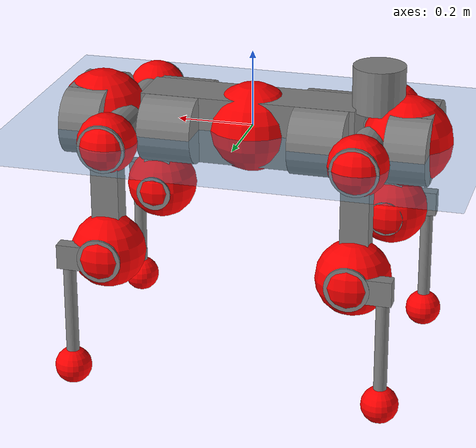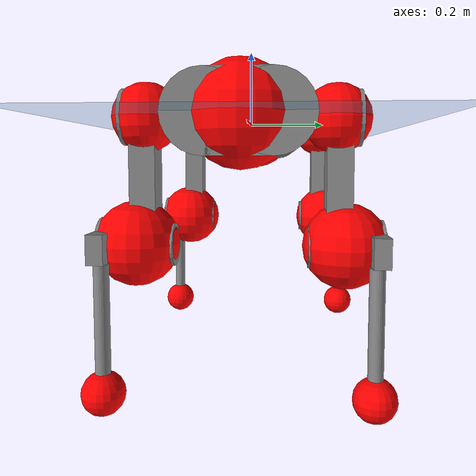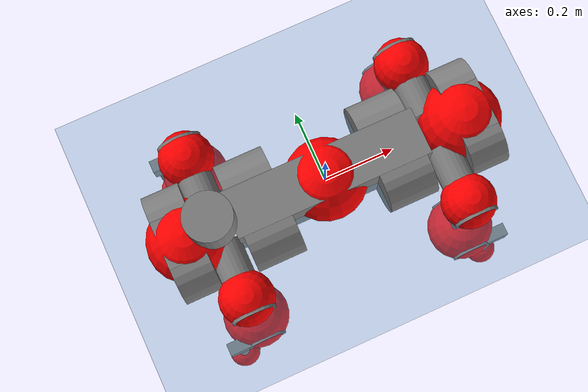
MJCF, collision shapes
<mujoco model="anymal_c">
  <compiler angle="radian" assetdir="assets" balanceinertia="true" inertiafromgeom="false"/>

  <option timestep="0.005" density="1.2" viscosity="2e-05"/>

  <size nkey="1"/>

  <visual>
    <quality shadowsize="8192"/>
    <map shadowclip="0.5"/>
  </visual>

  <default>
    <default class="/">
      <material specular="0" shininess="0.25"/>
      <geom contype="0" conaffinity="0" group="1" solref="-1000 -80"/>
      <site size="0.01 0.005 0.005" group="5"/>
      <general forcelimited="true" forcerange="-80 80" biastype="affine" gainprm="80" biasprm="0 -80 -2"/>
      <default class="anymal_c">
        <joint armature="0.01" damping="0.01" frictionloss="0.1"/>
        <default class="visual">
          <geom type="mesh" group="2"/>
          <default class="visual_zflip"/>
        </default>
        <default class="collision">
          <geom type="cylinder" group="3"/>
          <default class="foot">
            <geom size="0.03 0 0" type="sphere" condim="6" priority="1" friction="0.8 0.02 0.01" solimp="0.015 1 0.03"/>
          </default>
        </default>
      </default>
      <default class="reward_collision_sphere">
        <geom group="5" rgba="1 0 0 1"/>
      </default>
    </default>
  </default>

  <asset>
    <texture type="skybox" colorspace="auto" name="//unnamed_texture_0" builtin="gradient" rgb1="0.95 0.95 0.95" rgb2="0.95 0.95 0.95" width="100" height="600"/>
    <texture type="2d" colorspace="auto" name="texplane" builtin="checker" rgb1="0.345 0.575 0.748" rgb2="0.345 0.575 0.748" markrgb="1 1 1" width="512" height="512"/>
    <texture type="2d" colorspace="linear" name="base" file="base.png"/>
    <texture type="2d" colorspace="linear" name="top_shell" file="top_shell.png"/>
    <texture type="2d" colorspace="linear" name="bottom_shell" file="bottom_shell.png"/>
    <texture type="2d" colorspace="linear" name="remote" file="remote.png"/>
    <texture type="2d" colorspace="linear" name="hatch" file="hatch.png"/>
    <texture type="2d" colorspace="linear" name="handle" file="handle.png"/>
    <texture type="2d" colorspace="linear" name="face" file="face.png"/>
    <texture type="2d" colorspace="linear" name="battery" file="battery.png"/>
    <texture type="2d" colorspace="linear" name="lidar_cage" file="lidar_cage.png"/>
    <texture type="2d" colorspace="linear" name="depth_camera" file="depth_camera.png"/>
    <texture type="2d" colorspace="linear" name="wide_angle_camera" file="wide_angle_camera.png"/>
    <texture type="2d" colorspace="linear" name="lidar" file="lidar.png"/>
    <texture type="2d" colorspace="linear" name="drive" file="drive.png"/>
    <texture type="2d" colorspace="linear" name="hip_l" file="hip_l.png"/>
    <texture type="2d" colorspace="linear" name="shank_l" file="shank_l.png"/>
    <texture type="2d" colorspace="linear" name="foot" file="foot.png"/>
    <texture type="2d" colorspace="linear" name="thigh" file="thigh.png"/>
    <texture type="2d" colorspace="linear" name="shank_r" file="shank_r.png"/>
    <texture type="2d" colorspace="linear" name="hip_r" file="hip_r.png"/>
    <material name="MatPlane" class="/" texture="texplane" texuniform="true" texrepeat="2 2" specular="0.9" shininess="0.5"/>
    <material name="black_plastic" class="/" rgba="0.007 0.007 0.007 1"/>
    <material name="green" class="/" rgba="0.052 0.178 0.033 1"/>
    <material name="red" class="/" rgba="0.178 0.006 0.005 1"/>
    <material name="yellow" class="/" rgba="0.178 0.119 0.006 1"/>
    <material name="lwl" class="/" rgba="0.8 0.8 0.8 1"/>
    <material name="base" class="/" texture="base"/>
    <material name="top_shell" class="/" texture="top_shell"/>
    <material name="bottom_shell" class="/" texture="bottom_shell"/>
    <material name="hip_l" class="/" texture="hip_l"/>
    <material name="thigh" class="/" texture="thigh"/>
    <material name="shank_l" class="/" texture="shank_l"/>
    <material name="foot" class="/" texture="foot"/>
    <material name="hip_r" class="/" texture="hip_r"/>
    <material name="shank" class="/" texture="shank_r"/>
    <material name="hatch" class="/" texture="hatch"/>
    <material name="remote" class="/" texture="remote"/>
    <material name="handle" class="/" texture="handle"/>
    <material name="face" class="/" texture="face"/>
    <material name="depth_camera" class="/" texture="depth_camera"/>
    <material name="wide_angle_camera" class="/" texture="wide_angle_camera"/>
    <material name="battery" class="/" texture="battery"/>
    <material name="lidar_cage" class="/" texture="lidar_cage"/>
    <material name="lidar" class="/" texture="lidar"/>
    <material name="drive" class="/" texture="drive"/>
    <mesh name="base_0" class="/" file="base_0.obj"/>
    <mesh name="base_1" class="/" file="base_1.obj"/>
    <mesh name="base_2" class="/" file="base_2.obj"/>
    <mesh name="base_3" class="/" file="base_3.obj"/>
    <mesh name="base_4" class="/" file="base_4.obj"/>
    <mesh name="base_5" class="/" file="base_5.obj"/>
    <mesh name="top_shell" class="/" file="top_shell.obj"/>
    <mesh name="bottom_shell" class="/" file="bottom_shell.obj"/>
    <mesh name="remote" class="/" file="remote.obj"/>
    <mesh name="handle" class="/" file="handle.obj"/>
    <mesh name="face" class="/" file="face.obj"/>
    <mesh name="wide_angle_camera" class="/" file="wide_angle_camera.obj"/>
    <mesh name="depth_camera" class="/" file="depth_camera.obj"/>
    <mesh name="battery" class="/" file="battery.obj"/>
    <mesh name="lidar_cage" class="/" file="lidar_cage.obj"/>
    <mesh name="lidar" class="/" file="lidar.obj"/>
    <mesh name="drive" class="/" file="drive.obj"/>
    <mesh name="hip_l" class="/" file="hip_l.obj"/>
    <mesh name="thigh" class="/" file="thigh.obj"/>
    <mesh name="shank_l" class="/" file="shank_l.obj"/>
    <mesh name="foot" class="/" file="foot.obj"/>
    <mesh name="hip_r" class="/" file="hip_r.obj"/>
    <mesh name="hatch" class="/" file="hatch.obj"/>
    <mesh name="shank_r" class="/" file="shank_r.obj"/>
  </asset>

  <worldbody>
    <geom name="floor" class="/" size="100 100 0.125" type="plane" group="0" material="MatPlane"/>
    <light name="toplight_shadow" class="/" pos="0 0 5" dir="0.0990148 0.0990148 -0.990148" type="directional" ambient="0.04 0.04 0.04" diffuse="0.55 0.55 0.55" specular="0.12 0.12 0.12"/>
    <light name="toplight_fill" class="/" pos="0 0 5" dir="0.0990148 0.0990148 -0.990148" type="directional" castshadow="false" ambient="0.04 0.04 0.04" diffuse="0.3 0.3 0.3" specular="0.08 0.08 0.08"/>
    <body name="trunk" childclass="anymal_c" pos="0.000132769 -0.000146841 -0.0028261" quat="1 4.91979e-06 0.000183266 6.28524e-05">
      <inertial pos="0.0012105 0.0017381 0.0522791" quat="0.499376 0.50062 0.500185 0.499818" mass="16.7555" diaginertia="0.383755 0.591755 0.218823"/>
      <joint name="//unnamed_joint_0" type="free" armature="0" damping="0" frictionloss="0"/>
      <geom name="//unnamed_geom_1" class="visual" material="green" mesh="base_0"/>
      <geom name="//unnamed_geom_2" class="visual" material="yellow" mesh="base_1"/>
      <geom name="//unnamed_geom_3" class="visual" material="red" mesh="base_2"/>
      <geom name="//unnamed_geom_4" class="visual" material="black_plastic" mesh="base_3"/>
      <geom name="//unnamed_geom_5" class="visual" material="lwl" mesh="base_4"/>
      <geom name="//unnamed_geom_6" class="visual" material="base" mesh="base_5"/>
      <geom name="trunk_1" class="collision" size="0.281225 0.067882 0.0872769" type="box"/>
      <geom name="trunk_2" class="collision" size="0.0872769 0.0703064" pos="0.196564 0.0699224 0" quat="0.707107 0 0.707107 0"/>
      <geom name="trunk_3" class="collision" size="0.0872769 0.0703064" pos="-0.196564 0.0699224 0" quat="0.707107 0 0.707107 0"/>
      <geom name="trunk_4" class="collision" size="0.0872769 0.0703064" pos="0.196564 -0.0699224 0" quat="0.707107 0 0.707107 0"/>
      <geom name="trunk_5" class="collision" size="0.0872769 0.0703064" pos="-0.196564 -0.0699224 0" quat="0.707107 0 0.707107 0"/>
      <geom name="//unnamed_geom_12" class="visual" material="top_shell" mesh="top_shell"/>
      <geom name="//unnamed_geom_13" class="visual" material="bottom_shell" mesh="bottom_shell"/>
      <geom name="//unnamed_geom_14" class="visual" material="remote" mesh="remote"/>
      <geom name="//unnamed_geom_15" class="visual" material="handle" mesh="handle"/>
      <geom name="//unnamed_geom_16" class="visual" pos="0.374601 0 0" quat="1 0 0 0" material="face" mesh="face"/>
      <geom name="trunk_6" class="collision" size="0.0533359 0.067882 0.0872769" pos="0.424307 0 0" type="box"/>
      <geom name="//unnamed_geom_18" class="collision" size="0.0872769 0.0533359" pos="0.424307 0.0699224 0" quat="0.707107 0 0.707107 0"/>
      <geom name="//unnamed_geom_19" class="collision" size="0.0872769 0.0533359" pos="0.424307 -0.0699224 0" quat="0.707107 0 0.707107 0"/>
      <geom name="//unnamed_geom_20" class="visual" pos="0.417217 0 -0.0301743" quat="0.965926 0 0.258819 0" material="depth_camera" mesh="depth_camera"/>
      <geom name="//unnamed_geom_21" class="visual" pos="0.46362 0 0.0150687" material="wide_angle_camera" mesh="wide_angle_camera"/>
      <geom name="//unnamed_geom_22" class="visual_zflip" pos="-0.374601 0 0" quat="0 0 0 1" material="face" mesh="face"/>
      <geom name="trunk_7" class="collision" size="0.0533359 0.067882 0.0872769" pos="-0.424307 0 0" quat="0 0 0 1" type="box"/>
      <geom name="//unnamed_geom_24" class="collision" size="0.0872769 0.0533359" pos="-0.424307 -0.0699224 0" quat="0 -0.707107 0 0.707107"/>
      <geom name="//unnamed_geom_25" class="collision" size="0.0872769 0.0533359" pos="-0.424307 0.0699224 0" quat="0 -0.707107 0 0.707107"/>
      <geom name="//unnamed_geom_26" class="visual" pos="-0.417217 0 -0.0301743" quat="0 -0.258819 0 0.965926" material="depth_camera" mesh="depth_camera"/>
      <geom name="//unnamed_geom_27" class="visual_zflip" pos="-0.46362 0 0.0150687" quat="0 0 0 1" material="wide_angle_camera" mesh="wide_angle_camera"/>
      <geom name="//unnamed_geom_28" class="visual" material="battery" mesh="battery"/>
      <geom name="//unnamed_geom_29" class="visual" pos="0 0.077628 0.0284599" quat="0.683013 -0.183013 0.183013 0.683013" material="depth_camera" mesh="depth_camera"/>
      <geom name="//unnamed_geom_30" class="visual" pos="0 -0.077628 0.0284599" quat="0.683013 0.183013 0.183013 -0.683013" material="depth_camera" mesh="depth_camera"/>
      <geom name="//unnamed_geom_31" class="visual" pos="-0.328962 0 0.0739848" quat="1 0 0 0" material="lidar_cage" mesh="lidar_cage"/>
      <geom name="trunk_8" class="collision" size="0.067882 0.0581846" pos="-0.328962 0 0.134381"/>
      <geom name="//unnamed_geom_33" class="visual" pos="-0.328962 3.73816e-05 0.143138" quat="0.707107 0 0 -0.707107" material="lidar" mesh="lidar"/>
      <geom name="//unnamed_geom_34" class="visual" pos="0.271032 0.103887 -1.32904e-10" quat="0.258819 0.965926 0 0" material="drive" mesh="drive"/>
      <geom name="//unnamed_geom_35" class="visual" pos="0.271032 -0.103887 1.32904e-10" quat="0.258819 -0.965926 0 0" material="drive" mesh="drive"/>
      <geom name="//unnamed_geom_36" class="visual" pos="-0.271032 0.103887 1.32904e-10" quat="0 0 0.965926 -0.258819" material="drive" mesh="drive"/>
      <geom name="//unnamed_geom_37" class="visual" pos="-0.271032 -0.103887 -1.32904e-10" quat="0 0 -0.965926 -0.258819" material="drive" mesh="drive"/>
      <geom name="//unnamed_geom_38" class="visual" pos="0.104834 0 0.0734815" quat="1 0 0 0" material="hatch" mesh="hatch"/>
      <geom name="//unnamed_geom_39" class="reward_collision_sphere" size="0.116369"/>
      <geom name="//unnamed_geom_40" class="reward_collision_sphere" size="0.116369" pos="0.406684 0 0"/>
      <geom name="//unnamed_geom_41" class="reward_collision_sphere" size="0.116369" pos="-0.406684 0 0"/>
      <site name="imu" pos="0.231929 -0.00483792 0.0548932" size="0.00969743"/>
      <camera name="track" pos="0 -1.99778 0" quat="0.707107 0.707107 0 0" mode="trackcom"/>
      <camera name="ego_camera" pos="0.406684 0 -0.0402638" quat="-0.5 -0.5 0.5 0.5"/>
      <body name="LF_HIP" pos="0.271508 0.101882 -0.00160913" quat="0.258776 0.965937 0.000259122 -0.000238901">
        <inertial pos="0.04888 -0.0148325 -0.0107373" quat="-0.128652 0.712109 -0.136435 0.676561" mass="2.49021" diaginertia="0.00349913 0.00468128 0.00347626"/>
        <joint name="LF_HAA" pos="0 0 0" axis="0.999995 0.00104379 0.00298423" range="-0.760124 0.485303" armature="0.0111253" damping="0.0231635" frictionloss="0.084751"/>
        <geom name="//unnamed_geom_42" class="visual" pos="0 -7.81813e-06 1.28412e-06" quat="0.258819 -0.965926 0 0" material="hip_l" mesh="hip_l"/>
        <geom name="//unnamed_geom_43" class="visual" pos="0.0541341 -0.0668505 -0.0386532" quat="0.183013 -0.683013 0.683013 0.183013" material="drive" mesh="drive"/>
        <geom name="//unnamed_geom_44" class="collision" size="0.0484871 0.067882" pos="0.0541341 -0.0119465 -0.00695054" quat="-0.353553 -0.612372 0.612372 -0.353553"/>
        <body name="LF_THIGH" pos="0.054756 -0.07296 -0.0403675" quat="0.183018 -0.683015 0.683006 0.183021">
          <inertial pos="0.0282539 -0.000443922 -0.249845" quat="0.993115 -0.00736659 -0.0792101 0.0859855" mass="2.73557" diaginertia="0.0181387 0.0298813 0.00413476"/>
          <joint name="LF_HFE" pos="0 0 0" axis="0.999953 0.00332145 0.00906911" range="-3.20007 3.18012" armature="0.00996104" damping="0.00974177" frictionloss="0.0919546"/>
          <geom name="//unnamed_geom_45" class="visual" pos="-0.0018931 -2.98308e-06 0" quat="0.707107 0 0 -0.707107" material="thigh" mesh="thigh"/>
          <geom name="//unnamed_geom_46" class="collision" size="0.0630333 0.0387897" pos="0.0361497 0 0" quat="0.5 0.5 -0.5 -0.5"/>
          <geom name="//unnamed_geom_47" class="collision" size="0.0363654 0.0290923 0.137038" pos="0.0271123 0 -0.142246" quat="0.707107 0 0 -0.707107" type="box"/>
          <geom name="//unnamed_geom_48" class="visual" pos="0.0906453 0 -0.28688" quat="1 0 0 0" material="drive" mesh="drive"/>
          <geom name="//unnamed_geom_49" class="collision" size="0.0484871 0.067882" pos="0.0273834 0 -0.28688" quat="0.707107 0 0.707107 0"/>
          <geom name="//unnamed_geom_50" class="reward_collision_sphere" size="0.0775794" pos="0.0225935 0 0"/>
          <body name="LF_SHANK" pos="0.0892495 0.00251801 -0.284367" quat="1 -0.000666541 0.000207445 -0.000702653">
            <inertial pos="0.00586076 -0.0611713 -0.0814237" quat="0.992986 -0.115477 -0.000824657 -0.025363" mass="0.507698" diaginertia="0.00611689 0.00912195 0.00110282"/>
            <joint name="LF_KFE" pos="0 0 0" axis="1 0.000212434 0.000556483" range="-3.15867 3.14846" armature="0.00879466" damping="0.0222423" frictionloss="0.0832617"/>
            <geom name="//unnamed_geom_51" class="visual" pos="-0.000617298 -0.00329146 0" quat="0.707107 0 0 -0.707107" material="shank_l" mesh="shank_l"/>
            <geom name="LF_kfe_act" class="collision" size="0.0581846 0.0193949" pos="0.0180748 0 0" quat="0.5 0.5 -0.5 -0.5"/>
            <geom name="//unnamed_geom_53" class="collision" size="0.0557592 0.0327288 0.0184251" pos="0.0180748 -0.0574352 0" quat="0.5 0.5 -0.5 -0.5" type="box"/>
            <geom name="//unnamed_geom_54" class="visual" pos="0.011794 -0.0889132 -0.340199" quat="0.382683 0 0 -0.92388" material="foot" mesh="foot"/>
            <geom name="LF_calf" class="collision" size="0.0169705 0.136978" pos="0.0117938 -0.0878525 -0.1701" quat="0.707107 0 0 -0.707107"/>
            <geom name="LF_foot" class="foot" size="0.0313186" pos="0.0117938 -0.0878525 -0.317551" quat="0.707107 0 0 -0.707107"/>
            <geom name="//unnamed_geom_57" class="reward_collision_sphere" size="0.0969743" pos="-0.0451871 0 0"/>
            <geom name="//unnamed_geom_58" class="reward_collision_sphere" size="0.0484871" pos="0.0117938 -0.0878525 -0.317551"/>
            <site name="LF_foot" class="foot" pos="0.0117938 -0.0878525 -0.317551" quat="0.707107 0 0 -0.707107" size="0.00969743"/>
          </body>
        </body>
      </body>
      <body name="RF_HIP" pos="0.273144 -0.107127 0.000230498" quat="0.25865 -0.96597 -0.00125694 0.00047846">
        <inertial pos="0.0508141 0.0150813 -0.00792156" quat="0.132739 0.678967 0.127408 0.71074" mass="2.49743" diaginertia="0.0034786 0.00461597 0.00339582"/>
        <joint name="RF_HAA" pos="0 0 0" axis="1 8.23167e-05 -0.000321609" range="-0.438559 0.681446" armature="0.00967152" damping="0.0136578" frictionloss="0.0832939"/>
        <geom name="//unnamed_geom_59" class="visual" pos="0 7.81807e-06 1.28412e-06" quat="0.258819 0.965926 0 0" material="hip_r" mesh="hip_r"/>
        <geom name="//unnamed_geom_60" class="visual" pos="0.0541341 0.0668505 -0.0386532" quat="0.183013 0.683013 0.683013 -0.183013" material="drive" mesh="drive"/>
        <geom name="//unnamed_geom_61" class="collision" size="0.0484871 0.067882" pos="0.0541341 0.0119465 -0.00695054" quat="-0.353553 0.612372 0.612372 0.353553"/>
        <body name="RF_THIGH" pos="0.0555103 0.0752576 -0.0436951" quat="0.183624 0.682509 0.683261 -0.183354">
          <inertial pos="0.0276553 0.000763751 -0.247149" quat="0.992501 -0.00418635 -0.0825339 0.0900645" mass="2.75225" diaginertia="0.0180375 0.0293502 0.0043693"/>
          <joint name="RF_HFE" pos="0 0 0" axis="0.999975 0.00613167 0.00363765" stiffness="0.00636781" range="-3.12193 3.09975" armature="0.00967705" damping="0" frictionloss="0.0960838"/>
          <geom name="//unnamed_geom_62" class="visual" pos="-0.0018931 -2.98308e-06 0" quat="0.707107 0 0 -0.707107" material="thigh" mesh="thigh"/>
          <geom name="//unnamed_geom_63" class="collision" size="0.0630333 0.0387897" pos="0.0361497 0 0" quat="0.5 0.5 0.5 0.5"/>
          <geom name="//unnamed_geom_64" class="collision" size="0.0363654 0.0290923 0.137038" pos="0.0271123 0 -0.142246" quat="0.707107 0 0 0.707107" type="box"/>
          <geom name="//unnamed_geom_65" class="visual" pos="0.0906453 0 -0.28688" quat="1 0 0 0" material="drive" mesh="drive"/>
          <geom name="//unnamed_geom_66" class="collision" size="0.0484871 0.067882" pos="0.0273834 0 -0.28688" quat="0.707107 0 0.707107 0"/>
          <geom name="//unnamed_geom_67" class="reward_collision_sphere" size="0.0775794" pos="0.0225935 0 0"/>
          <body name="RF_SHANK" pos="0.0927109 0.00034583 -0.284466" quat="1 2.99195e-05 7.38753e-06 -0.000237159">
            <inertial pos="0.00352709 0.0610617 -0.079757" quat="0.992486 0.119863 -0.00235161 0.0244819" mass="0.534589" diaginertia="0.00637481 0.0092677 0.00116609"/>
            <joint name="RF_KFE" pos="0 0 0" axis="0.999994 0.0028856 -0.00169296" range="-3.11539 3.08703" armature="0.00951365" damping="0.0052128" frictionloss="0.0922368"/>
            <geom name="//unnamed_geom_68" class="visual" pos="-0.000617294 0.00329146 0" quat="0.707107 0 0 0.707107" material="shank" mesh="shank_r"/>
            <geom name="RF_kfe_act" class="collision" size="0.0581846 0.0193949" pos="0.0180748 0 0" quat="0.5 0.5 0.5 0.5"/>
            <geom name="//unnamed_geom_70" class="collision" size="0.0557592 0.0327288 0.0184251" pos="0.0180748 0.0574352 0" quat="0.5 0.5 0.5 0.5" type="box"/>
            <geom name="//unnamed_geom_71" class="visual" pos="0.0117937 0.0889132 -0.340199" quat="0.382683 0 0 0.92388" material="foot" mesh="foot"/>
            <geom name="RF_calf" class="collision" size="0.0169705 0.136978" pos="0.0117938 0.0878525 -0.1701" quat="0.707107 0 0 0.707107"/>
            <geom name="RF_foot" class="foot" size="0.0279928" pos="0.0117938 0.0878525 -0.317551" quat="0.707107 0 0 0.707107"/>
            <geom name="//unnamed_geom_74" class="reward_collision_sphere" size="0.0969743" pos="-0.0451871 0 0"/>
            <geom name="//unnamed_geom_75" class="reward_collision_sphere" size="0.0484871" pos="0.0117938 0.0878525 -0.317551"/>
            <site name="RF_foot" class="foot" pos="0.0117938 0.0878525 -0.317551" quat="0.707107 0 0 0.707107" size="0.00969743"/>
          </body>
        </body>
      </body>
      <body name="LH_HIP" pos="-0.270161 0.106525 -0.000270736" quat="0.000315175 7.25829e-05 0.966013 -0.258493">
        <inertial pos="0.0489388 0.0126739 -0.00898682" quat="0.136011 0.68079 0.129277 0.708035" mass="2.50857" diaginertia="0.00358918 0.00506234 0.00330603"/>
        <joint name="LH_HAA" pos="0 0 0" axis="0.999915 0.0130083 0.000210614" range="-0.492553 0.676414" armature="0.00960224" damping="0" frictionloss="0.109248"/>
        <geom name="//unnamed_geom_76" class="visual" pos="0 7.81807e-06 1.28412e-06" quat="-0.258819 -0.965926 0 0" material="hip_r" mesh="hip_r"/>
        <geom name="//unnamed_geom_77" class="visual" pos="0.0541341 0.0668505 -0.0386532" quat="0.183013 0.683013 0.683013 -0.183013" material="drive" mesh="drive"/>
        <geom name="//unnamed_geom_78" class="collision" size="0.0484871 0.067882" pos="0.0541341 0.0119465 -0.00695054" quat="-0.353553 0.612372 0.612372 0.353553"/>
        <body name="LH_THIGH" pos="0.0531845 0.069754 -0.0429134" quat="0.182643 0.682258 0.684056 -0.182298">
          <inertial pos="0.0266068 -0.00291271 -0.24729" quat="0.992534 0.00132745 -0.0776943 0.0940114" mass="2.77236" diaginertia="0.0187676 0.0294178 0.00455902"/>
          <joint name="LH_HFE" pos="0 0 0" axis="1 -2.38836e-06 0.000629909" stiffness="0.00727573" range="-3.13547 3.14947" armature="0.0094874" damping="0.00959534" frictionloss="0.0954931"/>
          <geom name="//unnamed_geom_79" class="visual" pos="-0.0018931 -2.98308e-06 0" quat="0.707107 0 0 -0.707107" material="thigh" mesh="thigh"/>
          <geom name="//unnamed_geom_80" class="collision" size="0.0630333 0.0387897" pos="0.0361497 0 0" quat="0.5 0.5 -0.5 -0.5"/>
          <geom name="//unnamed_geom_81" class="collision" size="0.0363654 0.0290923 0.137038" pos="0.0271123 0 -0.142246" quat="0.707107 0 0 -0.707107" type="box"/>
          <geom name="//unnamed_geom_82" class="visual" pos="0.0906453 0 -0.28688" quat="1 0 0 0" material="drive" mesh="drive"/>
          <geom name="//unnamed_geom_83" class="collision" size="0.0484871 0.067882" pos="0.0273834 0 -0.28688" quat="0.707107 0 0.707107 0"/>
          <geom name="//unnamed_geom_84" class="reward_collision_sphere" size="0.0775794" pos="0.0225935 0 0"/>
          <body name="LH_SHANK" pos="0.0930846 -0.000333692 -0.28752" quat="0.999999 -0.000370138 -0.000417257 0.00106018">
            <inertial pos="0.0076661 0.0596693 -0.0840138" quat="0.992939 0.115861 -0.000979413 0.0254629" mass="0.525488" diaginertia="0.00608938 0.00949423 0.00117491"/>
            <joint name="LH_KFE" pos="0 0 0" axis="0.999972 0.00248875 0.00709873" range="-3.14122 3.12866" armature="0.00941975" damping="0.0215919" frictionloss="0.108545"/>
            <geom name="//unnamed_geom_85" class="visual" pos="-0.000617294 0.00329146 0" quat="-0.707107 0 0 -0.707107" material="shank" mesh="shank_r"/>
            <geom name="LH_kfe_act" class="collision" size="0.0581846 0.0193949" pos="0.0180748 0 0" quat="0.5 0.5 -0.5 -0.5"/>
            <geom name="//unnamed_geom_87" class="collision" size="0.0557592 0.0327288 0.0184251" pos="0.0180748 0.0574352 0" quat="0.5 0.5 -0.5 -0.5" type="box"/>
            <geom name="//unnamed_geom_88" class="visual" pos="0.0117937 0.0889132 -0.340199" quat="-0.382683 0 0 -0.92388" material="foot" mesh="foot"/>
            <geom name="LH_calf" class="collision" size="0.0169705 0.136978" pos="0.0117938 0.0878525 -0.1701" quat="0.707107 0 0 -0.707107"/>
            <geom name="LH_foot" class="foot" size="0.0281646" pos="0.0117938 0.0878525 -0.317551" quat="0.707107 0 0 -0.707107"/>
            <geom name="//unnamed_geom_91" class="reward_collision_sphere" size="0.0969743" pos="-0.0451871 0 0"/>
            <geom name="//unnamed_geom_92" class="reward_collision_sphere" size="0.0484871" pos="0.0117938 0.0878525 -0.317551"/>
            <site name="LH_foot" class="foot" pos="0.0117938 0.0878525 -0.317551" quat="0.707107 0 0 -0.707107" size="0.00969743"/>
          </body>
        </body>
      </body>
      <body name="RH_HIP" pos="-0.271477 -0.101041 -0.000749264" quat="0.000138767 0.000600242 -0.966239 -0.257648">
        <inertial pos="0.0512437 -0.0129857 -0.0107899" quat="-0.129698 0.712871 -0.135654 0.675715" mass="2.42612" diaginertia="0.00352506 0.0045747 0.00329313"/>
        <joint name="RH_HAA" pos="0 0 0" axis="0.999956 -0.00936232 0.000336066" range="-0.770754 0.502686" armature="0.00848213" damping="0.00932789" frictionloss="0.110599"/>
        <geom name="//unnamed_geom_93" class="visual" pos="0 -7.81813e-06 1.28412e-06" quat="-0.258819 0.965926 0 0" material="hip_l" mesh="hip_l"/>
        <geom name="//unnamed_geom_94" class="visual" pos="0.0541341 -0.0668505 -0.0386532" quat="-0.183013 0.683013 -0.683013 -0.183013" material="drive" mesh="drive"/>
        <geom name="//unnamed_geom_95" class="collision" size="0.0484871 0.067882" pos="0.0541341 -0.0119465 -0.00695054" quat="0.353553 0.612372 -0.612372 0.353553"/>
        <body name="RH_THIGH" pos="0.0547812 -0.0721992 -0.0433127" quat="-0.183008 0.683014 -0.683019 -0.182992">
          <inertial pos="0.0280858 0.000858029 -0.244418" quat="0.994429 0.000765488 -0.0699084 0.0788872" mass="2.76173" diaginertia="0.0182277 0.0294383 0.00433311"/>
          <joint name="RH_HFE" pos="0 0 0" axis="0.999908 -0.0110425 -0.0078257" stiffness="0.0106335" range="-3.10071 3.10272" armature="0.0102234" damping="0.0096645" frictionloss="0.10229"/>
          <geom name="//unnamed_geom_96" class="visual" pos="-0.0018931 -2.98308e-06 0" quat="0.707107 0 0 -0.707107" material="thigh" mesh="thigh"/>
          <geom name="//unnamed_geom_97" class="collision" size="0.0630333 0.0387897" pos="0.0361497 0 0" quat="0.5 0.5 0.5 0.5"/>
          <geom name="//unnamed_geom_98" class="collision" size="0.0363654 0.0290923 0.137038" pos="0.0271123 0 -0.142246" quat="0.707107 0 0 0.707107" type="box"/>
          <geom name="//unnamed_geom_99" class="visual" pos="0.0906453 0 -0.28688" quat="1 0 0 0" material="drive" mesh="drive"/>
          <geom name="//unnamed_geom_100" class="collision" size="0.0484871 0.067882" pos="0.0273834 0 -0.28688" quat="0.707107 0 0.707107 0"/>
          <geom name="//unnamed_geom_101" class="reward_collision_sphere" size="0.0775794" pos="0.0225935 0 0"/>
          <body name="RH_SHANK" pos="0.088897 -0.00246304 -0.285487" quat="0.999999 0.00091955 0.000331412 0.00109415">
            <inertial pos="0.00749852 -0.0614843 -0.0814682" quat="0.993017 -0.11439 -0.00829952 -0.0276302" mass="0.506497" diaginertia="0.00591476 0.00879112 0.00113255"/>
            <joint name="RH_KFE" pos="0 0 0" axis="0.999974 0.00712634 -0.00120396" stiffness="0.00555781" range="-3.07925 3.18126" armature="0.0100188" damping="0.00904742" frictionloss="0.0933703"/>
            <geom name="//unnamed_geom_102" class="visual" pos="-0.000617298 -0.00329146 0" quat="0.707107 0 0 -0.707107" material="shank_l" mesh="shank_l"/>
            <geom name="RH_kfe_act" class="collision" size="0.0581846 0.0193949" pos="0.0180748 0 0" quat="0.5 0.5 0.5 0.5"/>
            <geom name="//unnamed_geom_104" class="collision" size="0.0557592 0.0327288 0.0184251" pos="0.0180748 -0.0574352 0" quat="0.5 0.5 0.5 0.5" type="box"/>
            <geom name="//unnamed_geom_105" class="visual" pos="0.011794 -0.0889132 -0.340199" quat="0.382683 0 0 -0.92388" material="foot" mesh="foot"/>
            <geom name="RH_calf" class="collision" size="0.0169705 0.136978" pos="0.0117938 -0.0878525 -0.1701" quat="0.707107 0 0 0.707107"/>
            <geom name="RH_foot" class="foot" size="0.0279155" pos="0.0117938 -0.0878525 -0.317551" quat="0.707107 0 0 0.707107"/>
            <geom name="//unnamed_geom_108" class="reward_collision_sphere" size="0.0969743" pos="-0.0451871 0 0"/>
            <geom name="//unnamed_geom_109" class="reward_collision_sphere" size="0.0484871" pos="0.0117938 -0.0878525 -0.317551"/>
            <site name="RH_foot" class="foot" pos="0.0117938 -0.0878525 -0.317551" quat="0.707107 0 0 0.707107" size="0.00969743"/>
          </body>
        </body>
      </body>
    </body>
  </worldbody>

  <contact>
    <pair class="/" geom1="floor" geom2="LF_foot" name="//unnamed_contact_0"/>
    <pair class="/" geom1="floor" geom2="RF_foot" name="//unnamed_contact_1"/>
    <pair class="/" geom1="floor" geom2="LH_foot" name="//unnamed_contact_2"/>
    <pair class="/" geom1="floor" geom2="RH_foot" name="//unnamed_contact_3"/>
  </contact>

  <actuator>
    <general name="LF_HAA" class="/" joint="LF_HAA" forcerange="-70.7715 70.7715" gainprm="82.0417" biasprm="0 -82.0417 -2.06113"/>
    <general name="LF_HFE" class="/" joint="LF_HFE" forcerange="-74.5679 74.5679" gainprm="82.0417" biasprm="0 -82.0417 -2.06113"/>
    <general name="LF_KFE" class="/" joint="LF_KFE" forcerange="-79.0647 79.0647" gainprm="82.0417" biasprm="0 -82.0417 -2.06113"/>
    <general name="RF_HAA" class="/" joint="RF_HAA" forcerange="-76.3063 76.3063" gainprm="82.0417" biasprm="0 -82.0417 -2.06113"/>
    <general name="RF_HFE" class="/" joint="RF_HFE" forcerange="-84.7043 84.7043" gainprm="82.0417" biasprm="0 -82.0417 -2.06113"/>
    <general name="RF_KFE" class="/" joint="RF_KFE" forcerange="-71.3639 71.3639" gainprm="82.0417" biasprm="0 -82.0417 -2.06113"/>
    <general name="LH_HAA" class="/" joint="LH_HAA" forcerange="-86.2667 86.2667" gainprm="82.0417" biasprm="0 -82.0417 -2.06113"/>
    <general name="LH_HFE" class="/" joint="LH_HFE" forcerange="-77.6661 77.6661" gainprm="82.0417" biasprm="0 -82.0417 -2.06113"/>
    <general name="LH_KFE" class="/" joint="LH_KFE" forcerange="-71.3291 71.3291" gainprm="82.0417" biasprm="0 -82.0417 -2.06113"/>
    <general name="RH_HAA" class="/" joint="RH_HAA" forcerange="-74.2667 74.2667" gainprm="82.0417" biasprm="0 -82.0417 -2.06113"/>
    <general name="RH_HFE" class="/" joint="RH_HFE" forcerange="-79.5834 79.5834" gainprm="82.0417" biasprm="0 -82.0417 -2.06113"/>
    <general name="RH_KFE" class="/" joint="RH_KFE" forcerange="-77.8862 77.8862" gainprm="82.0417" biasprm="0 -82.0417 -2.06113"/>
  </actuator>

  <sensor>
    <gyro site="imu" name="imu_angular_velocity"/>
    <velocimeter site="imu" name="imu_linear_velocity"/>
    <framelinvel objtype="site" objname="LF_foot" name="LF_foot_global_linear_velocity"/>
    <framelinvel objtype="site" objname="RF_foot" name="RF_foot_global_linear_velocity"/>
    <framelinvel objtype="site" objname="LH_foot" name="LH_foot_global_linear_velocity"/>
    <framelinvel objtype="site" objname="RH_foot" name="RH_foot_global_linear_velocity"/>
  </sensor>

  <keyframe>
    <key name="home" qpos="0 0 0.55 1 0 0 0 0 0.4 -0.8 0 -0.4 0.8 0 -0.4 0.8 0 0.4 -0.8"/>
  </keyframe>
</mujoco>
